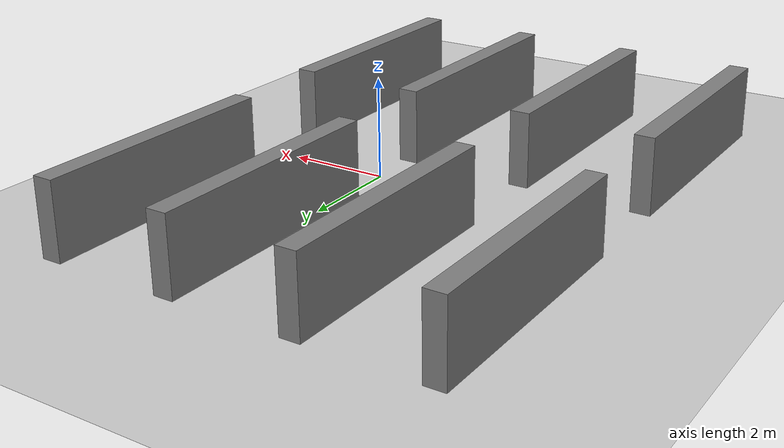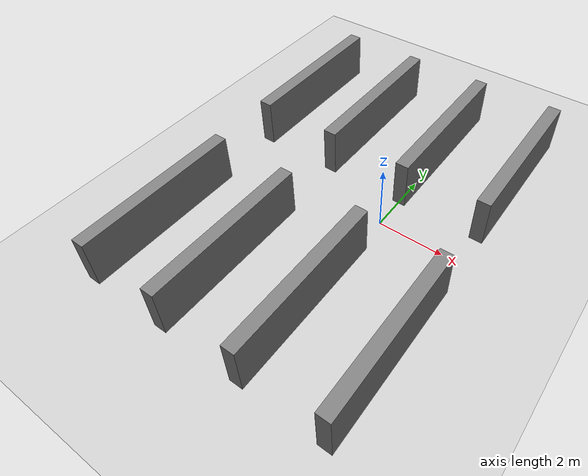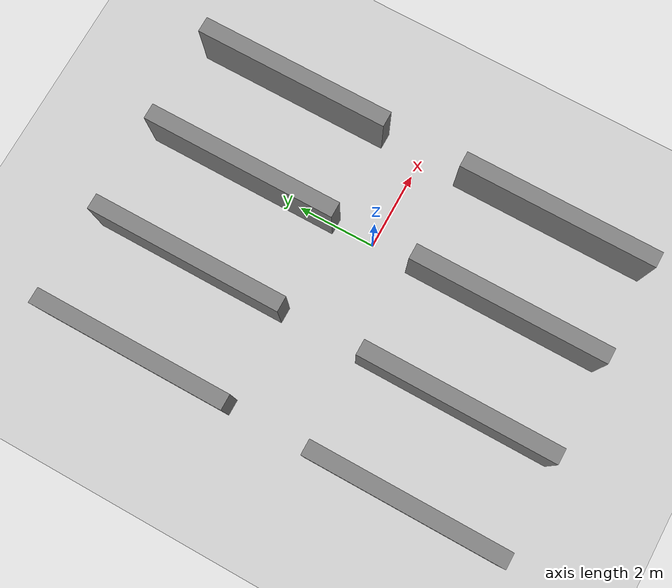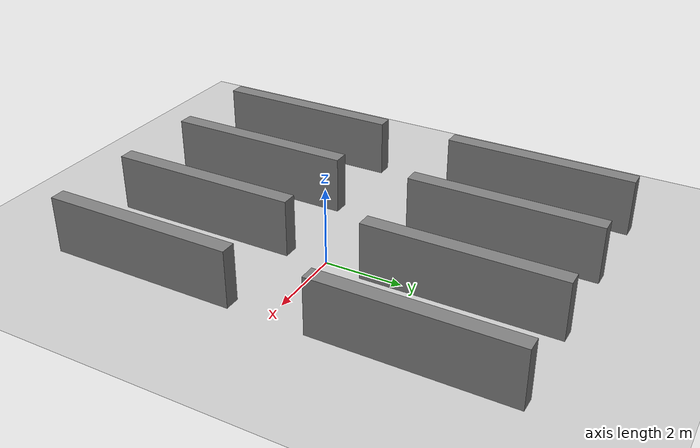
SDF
<?xml version="1.0" ?>
<sdf version="1.6">
  <world name="supermarket_world">

    <!-- Light -->
    <include>
      <uri>model://sun</uri>
    </include>

    <!-- Ground Plane -->
    <include>
      <uri>model://ground_plane</uri>
    </include>

    <!-- Left-side Aisles -->
    <model name="aisle_left_1">
      <static>true</static>
      <link name="link">
        <pose>-5.0 -3.5 0.75 0 0 0</pose>
        <collision name="collision">
          <geometry><box><size>0.4 5.0 1.5</size></box></geometry>
        </collision>
        <visual name="visual">
          <geometry><box><size>0.4 5.0 1.5</size></box></geometry>
          <material><ambient>0.5 0.5 0.5 1</ambient></material>
        </visual>
      </link>
    </model>

    <model name="aisle_left_2">
      <static>true</static>
      <link name="link">
        <pose>-2.5 -3.5 0.75 0 0 0</pose>
        <collision name="collision">
          <geometry><box><size>0.4 5.0 1.5</size></box></geometry>
        </collision>
        <visual name="visual">
          <geometry><box><size>0.4 5.0 1.5</size></box></geometry>
          <material><ambient>0.5 0.5 0.5 1</ambient></material>
        </visual>
      </link>
    </model>

    <model name="aisle_left_3">
      <static>true</static>
      <link name="link">
        <pose>0 -3.5 0.75 0 0 0</pose>
        <collision name="collision">
          <geometry><box><size>0.4 5.0 1.5</size></box></geometry>
        </collision>
        <visual name="visual">
          <geometry><box><size>0.4 5.0 1.5</size></box></geometry>
          <material><ambient>0.5 0.5 0.5 1</ambient></material>
        </visual>
      </link>
    </model>

    <model name="aisle_left_4">
      <static>true</static>
      <link name="link">
        <pose>2.5 -3.5 0.75 0 0 0</pose>
        <collision name="collision">
          <geometry><box><size>0.4 5.0 1.5</size></box></geometry>
        </collision>
        <visual name="visual">
          <geometry><box><size>0.4 5.0 1.5</size></box></geometry>
          <material><ambient>0.5 0.5 0.5 1</ambient></material>
        </visual>
      </link>
    </model>

    <model name="aisle_right_1">
      <static>true</static>
      <link name="link">
        <pose>-5.0 3.5 0.75 0 0 0</pose>
        <collision name="collision">
          <geometry><box><size>0.4 5.0 1.5</size></box></geometry>
        </collision>
        <visual name="visual">
          <geometry><box><size>0.4 5.0 1.5</size></box></geometry>
          <material><ambient>0.5 0.5 0.5 1</ambient></material>
        </visual>
      </link>
    </model>

    <model name="aisle_right_2">
      <static>true</static>
      <link name="link">
        <pose>-2.5 3.5 0.75 0 0 0</pose>
        <collision name="collision">
          <geometry><box><size>0.4 5.0 1.5</size></box></geometry>
        </collision>
        <visual name="visual">
          <geometry><box><size>0.4 5.0 1.5</size></box></geometry>
          <material><ambient>0.5 0.5 0.5 1</ambient></material>
        </visual>
      </link>
    </model>

    <model name="aisle_right_3">
      <static>true</static>
      <link name="link">
        <pose>0 3.5 0.75 0 0 0</pose>
        <collision name="collision">
          <geometry><box><size>0.4 5.0 1.5</size></box></geometry>
        </collision>
        <visual name="visual">
          <geometry><box><size>0.4 5.0 1.5</size></box></geometry>
          <material><ambient>0.5 0.5 0.5 1</ambient></material>
        </visual>
      </link>
    </model>

    <model name="aisle_right_4">
      <static>true</static>
      <link name="link">
        <pose>2.5 3.5 0.75 0 0 0</pose>
        <collision name="collision">
          <geometry><box><size>0.4 5.0 1.5</size></box></geometry>
        </collision>
        <visual name="visual">
          <geometry><box><size>0.4 5.0 1.5</size></box></geometry>
          <material><ambient>0.5 0.5 0.5 1</ambient></material>
        </visual>
      </link>
    </model>

  </world>
</sdf>
